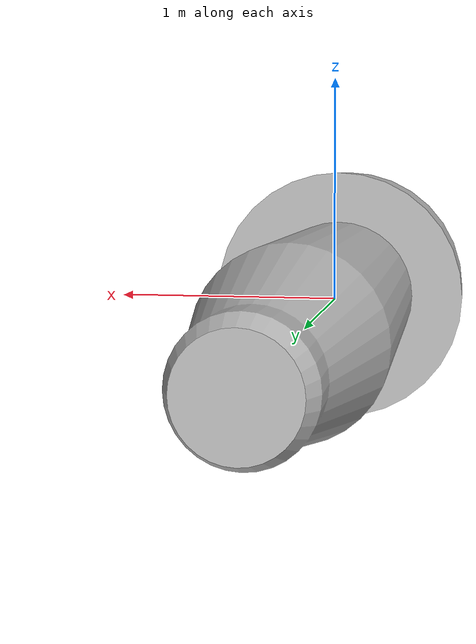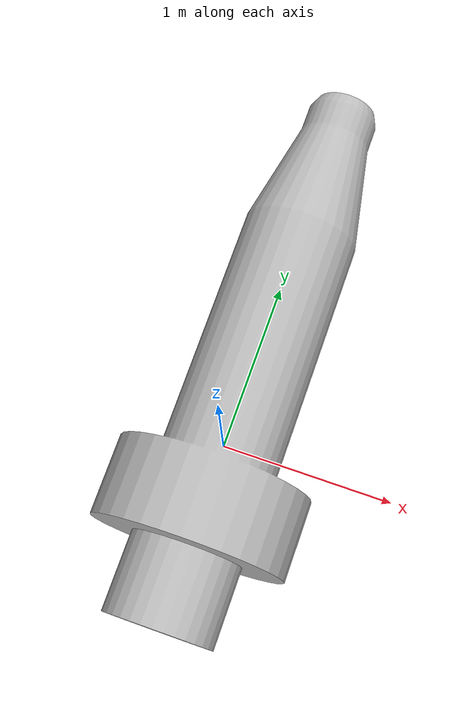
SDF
<?xml version="1.0" ?>
<sdf version="1.6">
    <model name="green_buoy">
        <link name="link">
            <inertial>
                <pose>0 0 0 0 0 0</pose>
                <mass>20</mass>
                <inertia>
                    <ixx>2.316</ixx>
                    <ixy>0</ixy>
                    <ixz>0</ixz>
                    <iyy>2.316</iyy>
                    <iyz>0</iyz>
                    <izz>0.225</izz>
                </inertia>
            </inertial>
            <collision name="collision">
                <geometry>
                    <mesh>
                        <uri>meshes/green_buoy.obj</uri>
                    </mesh>
                </geometry>
            </collision>
            <visual name="visual">
                <geometry>
                    <mesh>
                        <uri>meshes/green_buoy.obj</uri>
                    </mesh>
                </geometry>
            </visual>
        </link>
    </model>
</sdf>
